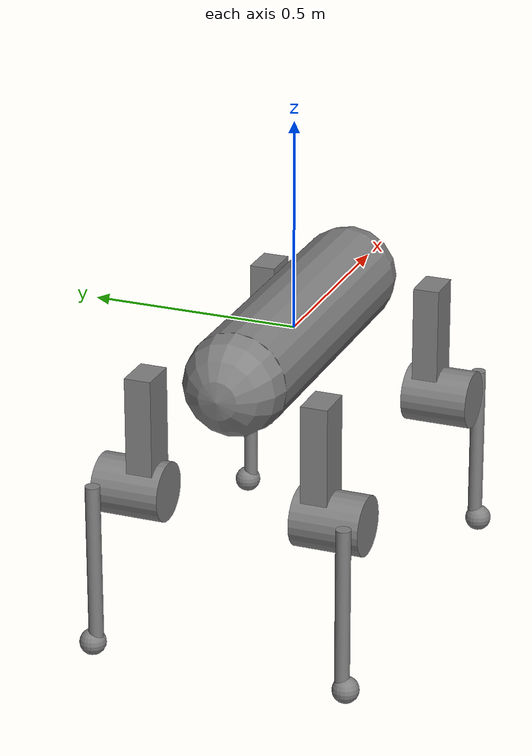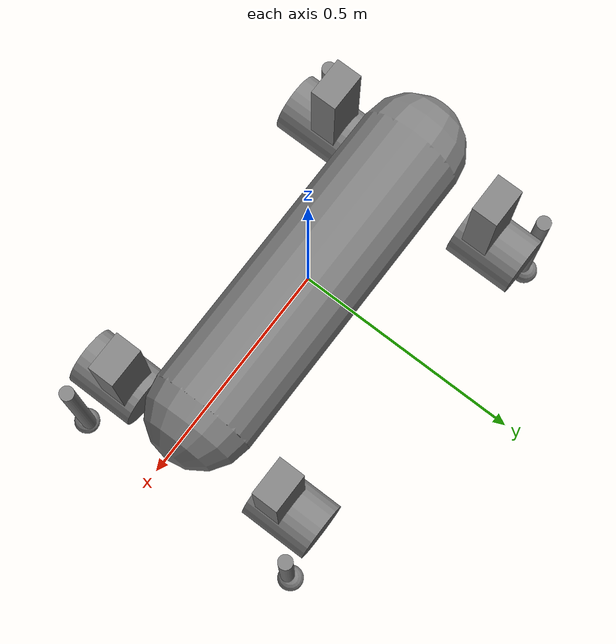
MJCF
<mujoco model="anymal">
  <compiler angle="radian"/>

  <option timestep="0.01" impratio="100" gravity="0 0 -9.81" cone="elliptic" iterations="100" ls_iterations="50"/>

  <default>
    <geom friction="1 0.5 0.001" solref="0.01"/>
  </default>

  <worldbody>
    <body name="/World/envs/env_0/Robot/base">
      <inertial pos="-0.0156262 0.000679619 -0.0115341" quat="0.00514525 0.712947 0.00225068 0.701195" mass="26.4596" diaginertia="1.54083 1.47549 0.252864"/>
      <joint name="joint_1" type="free"/>
      <geom name="capsule_9" size="0.12 0.35" quat="0.707107 0 0.707107 0" type="capsule" contype="1024" conaffinity="2147482623" friction="0.5 0.25 0.0005"/>
      <body name="/World/envs/env_0/Robot/LF_HIP" pos="0.304 0.109 0">
        <inertial pos="0.035047 -0.00122677 0" quat="0.502484 0.502593 0.497424 0.497473" mass="0.36586" diaginertia="0.000558279 0.000443321 0.00023849"/>
        <joint name="/World/envs/env_0/Robot/base/LF_HAA" pos="0 0 0" axis="1 0 0" limited="true" range="-0.785398 0.610865" armature="0.01"/>
        <body name="/World/envs/env_0/Robot/LF_THIGH" pos="0.069 0.006 0" quat="-3.09086e-08 0.707107 0.707107 3.09086e-08">
          <inertial pos="-0.0905113 -8.79575e-05 -0.140188" quat="0.99036 -0.00771394 0.1034 -0.0918498" mass="5.1322" diaginertia="0.10915 0.107919 0.00970373"/>
          <joint name="/World/envs/env_0/Robot/LF_HIP/LF_HFE" pos="0 0 0" axis="1 0 0" limited="true" range="-9.42478 9.42478" armature="0.01"/>
          <geom name="box_5" size="0.0465 0.0315 0.1425" pos="0.09513 -5.67019e-09 0.1425" quat="-3.09086e-08 -0.707107 -0.707107 -3.09086e-08" type="box" contype="64" conaffinity="2147483583" friction="0.5 0.25 0.0005"/>
          <geom name="cylinder_10" size="0.07 0.081565" pos="0.125065 -7.45445e-09 0.285" quat="0.5 -0.5 -0.5 0.5" type="cylinder" contype="64" conaffinity="2147483583" friction="0.5 0.25 0.0005"/>
          <body name="/World/envs/env_0/Robot/LF_SHANK" pos="0.1805 -1.07586e-08 0.285" quat="0 -1 0 -4.37114e-08">
            <inertial pos="0.00893208 -0.0218162 0.000419159" quat="0.698829 0.715221 -0.00860088 -0.00482772" mass="0.49954" diaginertia="0.0016716 0.00127452 0.000549681"/>
            <joint name="/World/envs/env_0/Robot/LF_THIGH/LF_KFE" pos="0 0 0" axis="1 0 0" limited="true" range="-9.42478 9.42478" armature="0.01"/>
            <geom name="cylinder_11" size="0.0175 0.19786" pos="0.00535884 -0.1 -0.164217" quat="-0.707107 0 0 0.707107" type="cylinder" contype="64" conaffinity="2147483583" friction="0.5 0.25 0.0005"/>
            <body name="/World/envs/env_0/Robot/LF_FOOT" pos="0.02225 -0.1 -0.39246" quat="0.707107 0 0 -0.707107">
              <inertial pos="0 -0.01559 0.15004" quat="0.999868 0.0162581 0 0" mass="0.29644" diaginertia="0.00514263 0.00513691 0.000113592"/>
              <geom name="sphere_1" size="0.031455" pos="0 -0.00814115 0.0303832" contype="4" conaffinity="2147483643" friction="0.5 0.25 0.0005"/>
            </body>
          </body>
        </body>
      </body>
      <body name="/World/envs/env_0/Robot/LH_HIP" pos="-0.304 0.109 0" quat="0 1 -4.37114e-08 4.37114e-08">
        <inertial pos="0.035047 0.00122676 0" quat="0.497473 0.497424 0.502593 0.502484" mass="0.36586" diaginertia="0.000558279 0.000443321 0.00023849"/>
        <joint name="/World/envs/env_0/Robot/base/LH_HAA" pos="0 0 0" axis="1 0 0" limited="true" range="-0.785398 0.610865" armature="0.01"/>
        <body name="/World/envs/env_0/Robot/LH_THIGH" pos="-0.069 -0.00600001 -6.03217e-09" quat="-0.707107 -6.18172e-08 0 0.707107">
          <inertial pos="-0.0905113 8.79522e-05 -0.140188" quat="0.986364 0.0124144 0.10293 0.127814" mass="5.1322" diaginertia="0.109194 0.107873 0.00970476"/>
          <joint name="/World/envs/env_0/Robot/LH_HIP/LH_HFE" pos="0 0 0" axis="1 0 0" limited="true" range="-9.42478 9.42478" armature="0.01"/>
          <geom name="box_6" size="0.0465 0.0315 0.1425" pos="0.09513 -5.67019e-09 0.1425" quat="-3.09086e-08 -0.707107 -0.707107 -3.09086e-08" type="box" contype="128" conaffinity="2147483519" friction="0.5 0.25 0.0005"/>
          <geom name="cylinder_12" size="0.07 0.081565" pos="0.125065 -7.45445e-09 0.285" quat="0.5 -0.5 -0.5 0.5" type="cylinder" contype="128" conaffinity="2147483519" friction="0.5 0.25 0.0005"/>
          <body name="/World/envs/env_0/Robot/LH_SHANK" pos="0.1805 -1.07586e-08 0.285" quat="0 -1 0 -4.37114e-08">
            <inertial pos="0.00893208 0.0218162 0.000419159" quat="0.715221 0.698829 0.00482768 0.00860083" mass="0.49954" diaginertia="0.0016716 0.00127452 0.000549681"/>
            <joint name="/World/envs/env_0/Robot/LH_THIGH/LH_KFE" pos="0 0 0" axis="1 0 0" limited="true" range="-9.42478 9.42478" armature="0.01"/>
            <geom name="cylinder_13" size="0.0175 0.19786" pos="0.00535885 0.1 -0.164217" quat="-0.707107 0 0 0.707107" type="cylinder" contype="128" conaffinity="2147483519" friction="0.5 0.25 0.0005"/>
            <body name="/World/envs/env_0/Robot/LH_FOOT" pos="0.02225 0.1 -0.39246" quat="0.707107 0 0 -0.707107">
              <inertial pos="0 -0.01559 0.15004" quat="0.999868 0.0162581 0 0" mass="0.29644" diaginertia="0.00514263 0.00513691 0.000113592"/>
              <geom name="sphere_2" size="0.031455" pos="0 -0.00814115 0.0303832" contype="8" conaffinity="2147483639" friction="0.5 0.25 0.0005"/>
            </body>
          </body>
        </body>
      </body>
      <body name="/World/envs/env_0/Robot/RF_HIP" pos="0.304 -0.109 0">
        <inertial pos="0.035047 0.00122677 0" quat="0.497473 0.497424 0.502593 0.502484" mass="0.36586" diaginertia="0.000558279 0.000443321 0.00023849"/>
        <joint name="/World/envs/env_0/Robot/base/RF_HAA" pos="0 0 0" axis="1 0 0" limited="true" range="-0.610865 0.785398" armature="0.01"/>
        <body name="/World/envs/env_0/Robot/RF_THIGH" pos="0.069 -0.006 0" quat="0.707107 0 0 0.707107">
          <inertial pos="-0.0905113 8.79575e-05 -0.140188" quat="0.986364 0.0124145 0.10293 0.127815" mass="5.1322" diaginertia="0.109194 0.107873 0.00970475"/>
          <joint name="/World/envs/env_0/Robot/RF_HIP/RF_HFE" pos="0 0 0" axis="1 0 0" limited="true" range="-9.42478 9.42478" armature="0.01"/>
          <geom name="box_7" size="0.0465 0.0315 0.1425" pos="-0.09513 5.67019e-09 -0.1425" quat="-0.707107 0 0 0.707107" type="box" contype="256" conaffinity="2147483391" friction="0.5 0.25 0.0005"/>
          <geom name="cylinder_14" size="0.07 0.081565" pos="-0.125065 7.45445e-09 -0.285" quat="-0.5 -0.5 0.5 0.5" type="cylinder" contype="256" conaffinity="2147483391" friction="0.5 0.25 0.0005"/>
          <body name="/World/envs/env_0/Robot/RF_SHANK" pos="-0.1805 1.07586e-08 -0.285" quat="0 1 0 4.37114e-08">
            <inertial pos="0.00893208 0.0218162 0.000419159" quat="0.715221 0.698829 0.00482772 0.00860088" mass="0.49954" diaginertia="0.0016716 0.00127452 0.000549681"/>
            <joint name="/World/envs/env_0/Robot/RF_THIGH/RF_KFE" pos="0 0 0" axis="1 0 0" limited="true" range="-9.42478 9.42478" armature="0.01"/>
            <geom name="cylinder_15" size="0.0175 0.19786" pos="-0.00535885 0.1 0.164217" quat="-3.09086e-08 -0.707107 -0.707107 -3.09086e-08" type="cylinder" contype="256" conaffinity="2147483391" friction="0.5 0.25 0.0005"/>
            <body name="/World/envs/env_0/Robot/RF_FOOT" pos="-0.02225 0.1 0.39246" quat="-3.09086e-08 -0.707107 -0.707107 -3.09086e-08">
              <inertial pos="0 0.01559 0.15004" quat="0.999868 -0.0162581 0 0" mass="0.29644" diaginertia="0.00514263 0.00513691 0.000113592"/>
              <geom name="sphere_3" size="0.031455" pos="0 0.00814115 0.0303832" contype="16" conaffinity="2147483631" friction="0.5 0.25 0.0005"/>
            </body>
          </body>
        </body>
      </body>
      <body name="/World/envs/env_0/Robot/RH_HIP" pos="-0.304 -0.109 0" quat="0 1 -4.37114e-08 4.37114e-08">
        <inertial pos="0.035047 -0.00122677 0" quat="0.502484 0.502593 0.497424 0.497473" mass="0.36586" diaginertia="0.000558279 0.000443321 0.00023849"/>
        <joint name="/World/envs/env_0/Robot/base/RH_HAA" pos="0 0 0" axis="1 0 0" limited="true" range="-0.610865 0.785398" armature="0.01"/>
        <body name="/World/envs/env_0/Robot/RH_THIGH" pos="-0.069 0.00599999 -6.03217e-09" quat="-3.09086e-08 0.707107 -0.707107 3.09086e-08">
          <inertial pos="-0.0905113 -8.79522e-05 -0.140188" quat="0.99036 -0.00771395 0.1034 -0.09185" mass="5.1322" diaginertia="0.109149 0.107919 0.00970372"/>
          <joint name="/World/envs/env_0/Robot/RH_HIP/RH_HFE" pos="0 0 0" axis="1 0 0" limited="true" range="-9.42478 9.42478" armature="0.01"/>
          <geom name="box_8" size="0.0465 0.0315 0.1425" pos="-0.09513 5.67019e-09 -0.1425" quat="-0.707107 0 0 0.707107" type="box" contype="512" conaffinity="2147483135" friction="0.5 0.25 0.0005"/>
          <geom name="cylinder_16" size="0.07 0.081565" pos="-0.125065 7.45445e-09 -0.285" quat="0.5 0.5 -0.5 -0.5" type="cylinder" contype="512" conaffinity="2147483135" friction="0.5 0.25 0.0005"/>
          <body name="/World/envs/env_0/Robot/RH_SHANK" pos="-0.1805 1.07586e-08 -0.285" quat="0 1 0 4.37114e-08">
            <inertial pos="0.00893208 -0.0218162 0.000419159" quat="0.698829 0.715221 -0.00860083 -0.00482768" mass="0.49954" diaginertia="0.0016716 0.00127452 0.000549681"/>
            <joint name="/World/envs/env_0/Robot/RH_THIGH/RH_KFE" pos="0 0 0" axis="1 0 0" limited="true" range="-9.42478 9.42478" armature="0.01"/>
            <geom name="cylinder_17" size="0.0175 0.19786" pos="-0.00535887 -0.1 0.164217" quat="-3.09086e-08 -0.707107 -0.707107 -3.09086e-08" type="cylinder" contype="512" conaffinity="2147483135" friction="0.5 0.25 0.0005"/>
            <body name="/World/envs/env_0/Robot/RH_FOOT" pos="-0.02225 -0.1 0.39246" quat="-3.09086e-08 -0.707107 -0.707107 -3.09086e-08">
              <inertial pos="0 0.01559 0.15004" quat="0.999868 -0.0162581 0 0" mass="0.29644" diaginertia="0.00514263 0.00513691 0.000113592"/>
              <geom name="sphere_4" size="0.031455" pos="0 0.00814115 0.0303832" contype="32" conaffinity="2147483615" friction="0.5 0.25 0.0005"/>
            </body>
          </body>
        </body>
      </body>
    </body>
  </worldbody>

  <actuator>
    <general joint="/World/envs/env_0/Robot/base/LF_HAA" forcerange="-1000000000 1000000000" biastype="affine"/>
    <general joint="/World/envs/env_0/Robot/LF_HIP/LF_HFE" forcerange="-1000000000 1000000000" biastype="affine"/>
    <general joint="/World/envs/env_0/Robot/LF_THIGH/LF_KFE" forcerange="-1000000000 1000000000" biastype="affine"/>
    <general joint="/World/envs/env_0/Robot/base/LH_HAA" forcerange="-1000000000 1000000000" biastype="affine"/>
    <general joint="/World/envs/env_0/Robot/LH_HIP/LH_HFE" forcerange="-1000000000 1000000000" biastype="affine"/>
    <general joint="/World/envs/env_0/Robot/LH_THIGH/LH_KFE" forcerange="-1000000000 1000000000" biastype="affine"/>
    <general joint="/World/envs/env_0/Robot/base/RF_HAA" forcerange="-1000000000 1000000000" biastype="affine"/>
    <general joint="/World/envs/env_0/Robot/RF_HIP/RF_HFE" forcerange="-1000000000 1000000000" biastype="affine"/>
    <general joint="/World/envs/env_0/Robot/RF_THIGH/RF_KFE" forcerange="-1000000000 1000000000" biastype="affine"/>
    <general joint="/World/envs/env_0/Robot/base/RH_HAA" forcerange="-1000000000 1000000000" biastype="affine"/>
    <general joint="/World/envs/env_0/Robot/RH_HIP/RH_HFE" forcerange="-1000000000 1000000000" biastype="affine"/>
    <general joint="/World/envs/env_0/Robot/RH_THIGH/RH_KFE" forcerange="-1000000000 1000000000" biastype="affine"/>
  </actuator>
</mujoco>
